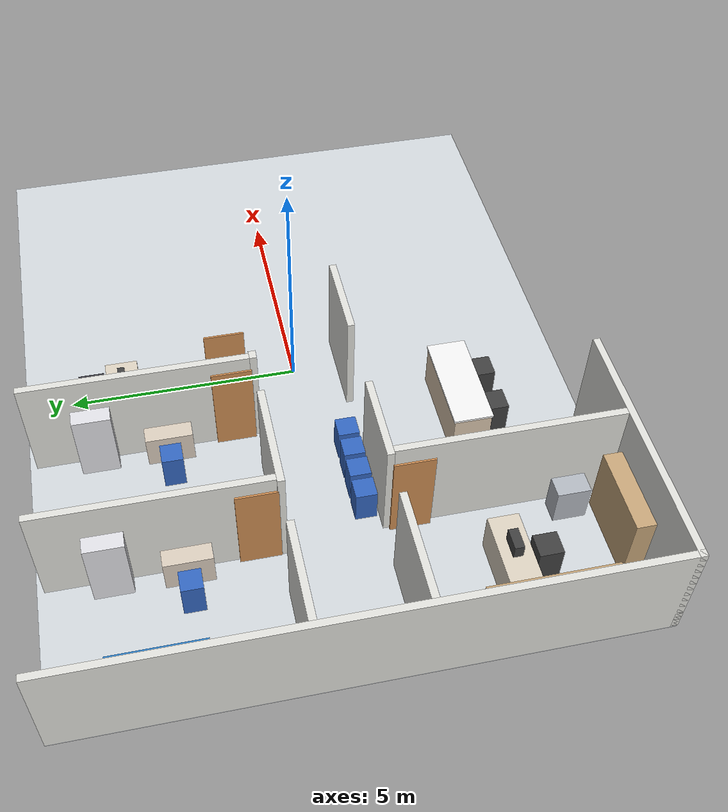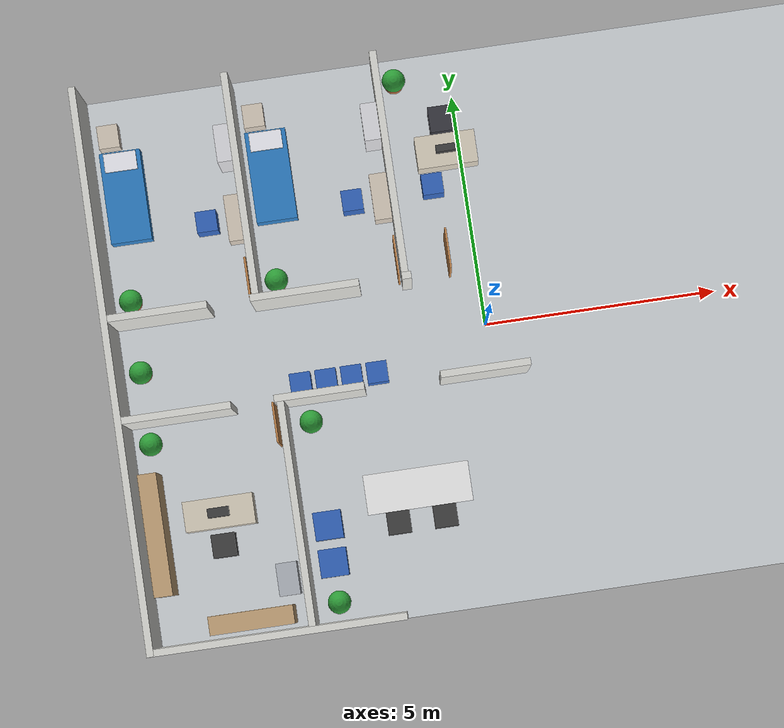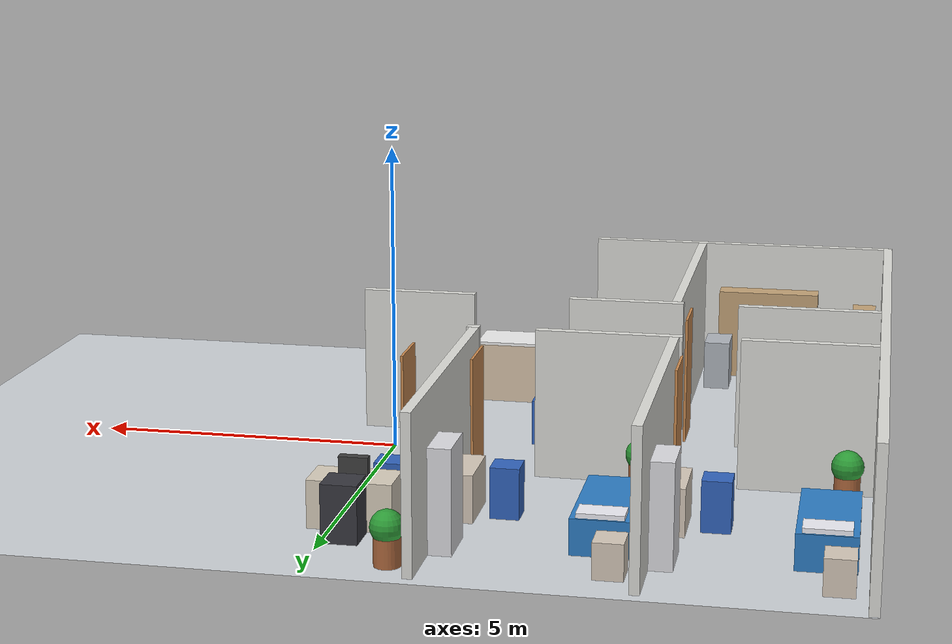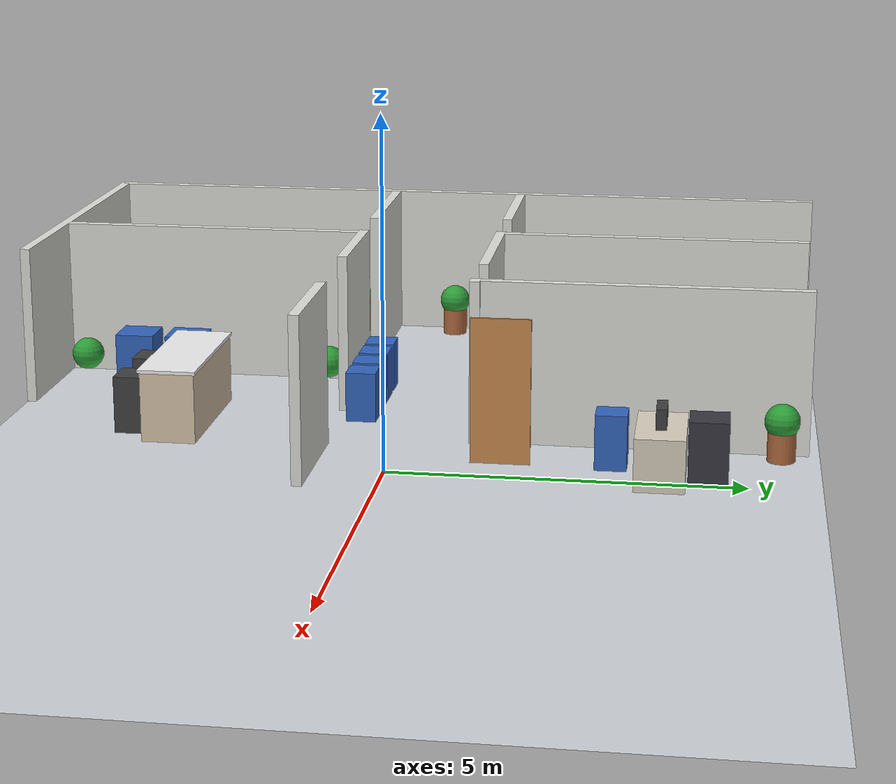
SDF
<sdf version="1.8">
 <world name="hospital">
  <model name="hospital_floor">
   <static>true</static>
   <link name="link">
    <collision name="collision">
     <geometry><plane><normal>0 0 1</normal><size>30 30</size></plane></geometry>
    </collision>
    <visual name="visual">
     <geometry><plane><normal>0 0 1</normal><size>16.0 12.0</size></plane></geometry>
     <material>
      <ambient>0.78 0.80 0.82 1</ambient>
      <diffuse>0.82 0.84 0.86 1</diffuse>
      <specular>0.15 0.15 0.15 1</specular>
     </material>
    </visual>
   </link>
  </model>
  <model name="wall_perimeter_west">
   <static>true</static>
   <pose>-7.925 0 1.2 0 0 0</pose>
   <link name="link">
    <collision name="col"><geometry><box><size>0.15 12.0 2.4</size></box></geometry></collision>
    <visual name="vis">
     <geometry><box><size>0.15 12.0 2.4</size></box></geometry>
     <material><ambient>0.85 0.85 0.83 1</ambient><diffuse>0.88 0.88 0.86 1</diffuse></material>
    </visual>
   </link>
  </model>
  <model name="wall_perimeter_south_west">
   <static>true</static>
   <pose>-5.275 -5.925 1.2 0 0 0</pose>
   <link name="link">
    <collision name="col"><geometry><box><size>5.45 0.15 2.4</size></box></geometry></collision>
    <visual name="vis">
     <geometry><box><size>5.45 0.15 2.4</size></box></geometry>
     <material><ambient>0.85 0.85 0.83 1</ambient><diffuse>0.88 0.88 0.86 1</diffuse></material>
    </visual>
   </link>
  </model>
  <model name="wall_nc_seg1">
   <static>true</static>
   <pose>-6.80 1.075 1.2 0 0 0</pose>
   <link name="link">
    <collision name="col"><geometry><box><size>2.10 0.15 2.4</size></box></geometry></collision>
    <visual name="vis">
     <geometry><box><size>2.10 0.15 2.4</size></box></geometry>
     <material><ambient>0.85 0.85 0.83 1</ambient><diffuse>0.88 0.88 0.86 1</diffuse></material>
    </visual>
   </link>
  </model>
  <model name="wall_nc_seg2">
   <static>true</static>
   <pose>-3.70 1.075 1.2 0 0 0</pose>
   <link name="link">
    <collision name="col"><geometry><box><size>2.30 0.15 2.4</size></box></geometry></collision>
    <visual name="vis">
     <geometry><box><size>2.30 0.15 2.4</size></box></geometry>
     <material><ambient>0.85 0.85 0.83 1</ambient><diffuse>0.88 0.88 0.86 1</diffuse></material>
    </visual>
   </link>
  </model>
  <model name="wall_nc_seg3">
   <static>true</static>
   <pose>-1.55 1.075 1.2 0 0 0</pose>
   <link name="link">
    <collision name="col"><geometry><box><size>0.20 0.15 2.4</size></box></geometry></collision>
    <visual name="vis">
     <geometry><box><size>0.20 0.15 2.4</size></box></geometry>
     <material><ambient>0.85 0.85 0.83 1</ambient><diffuse>0.88 0.88 0.86 1</diffuse></material>
    </visual>
   </link>
  </model>
  <model name="wall_part_r1_r2">
   <static>true</static>
   <pose>-4.725 3.50 1.2 0 0 0</pose>
   <link name="link">
    <collision name="col"><geometry><box><size>0.15 4.70 2.4</size></box></geometry></collision>
    <visual name="vis">
     <geometry><box><size>0.15 4.70 2.4</size></box></geometry>
     <material><ambient>0.85 0.85 0.83 1</ambient><diffuse>0.88 0.88 0.86 1</diffuse></material>
    </visual>
   </link>
  </model>
  <model name="wall_part_r2_dr">
   <static>true</static>
   <pose>-1.575 3.50 1.2 0 0 0</pose>
   <link name="link">
    <collision name="col"><geometry><box><size>0.15 4.70 2.4</size></box></geometry></collision>
    <visual name="vis">
     <geometry><box><size>0.15 4.70 2.4</size></box></geometry>
     <material><ambient>0.85 0.85 0.83 1</ambient><diffuse>0.88 0.88 0.86 1</diffuse></material>
    </visual>
   </link>
  </model>
  <model name="wall_sc_seg1">
   <static>true</static>
   <pose>-6.70 -1.075 1.2 0 0 0</pose>
   <link name="link">
    <collision name="col"><geometry><box><size>2.30 0.15 2.4</size></box></geometry></collision>
    <visual name="vis">
     <geometry><box><size>2.30 0.15 2.4</size></box></geometry>
     <material><ambient>0.85 0.85 0.83 1</ambient><diffuse>0.88 0.88 0.86 1</diffuse></material>
    </visual>
   </link>
  </model>
  <model name="wall_sc_seg2">
   <static>true</static>
   <pose>-3.70 -1.075 1.2 0 0 0</pose>
   <link name="link">
    <collision name="col"><geometry><box><size>1.90 0.15 2.4</size></box></geometry></collision>
    <visual name="vis">
     <geometry><box><size>1.90 0.15 2.4</size></box></geometry>
     <material><ambient>0.85 0.85 0.83 1</ambient><diffuse>0.88 0.88 0.86 1</diffuse></material>
    </visual>
   </link>
  </model>
  <model name="wall_sc_seg3">
   <static>true</static>
   <pose>-0.20 -1.075 1.2 0 0 0</pose>
   <link name="link">
    <collision name="col"><geometry><box><size>1.90 0.15 2.4</size></box></geometry></collision>
    <visual name="vis">
     <geometry><box><size>1.90 0.15 2.4</size></box></geometry>
     <material><ambient>0.85 0.85 0.83 1</ambient><diffuse>0.88 0.88 0.86 1</diffuse></material>
    </visual>
   </link>
  </model>
  <model name="wall_part_ph_rw">
   <static>true</static>
   <pose>-4.525 -3.50 1.2 0 0 0</pose>
   <link name="link">
    <collision name="col"><geometry><box><size>0.15 4.70 2.4</size></box></geometry></collision>
    <visual name="vis">
     <geometry><box><size>0.15 4.70 2.4</size></box></geometry>
     <material><ambient>0.85 0.85 0.83 1</ambient><diffuse>0.88 0.88 0.86 1</diffuse></material>
    </visual>
   </link>
  </model>
  <model name="door_panel_r1">
   <static>true</static>
   <pose>-4.85 1.55 1.05 0 0 0</pose>
   <link name="link">
    <visual name="vis">
     <geometry><box><size>0.04 0.85 2.1</size></box></geometry>
     <material><ambient>0.75 0.52 0.30 1</ambient><diffuse>0.80 0.55 0.32 1</diffuse></material>
    </visual>
   </link>
  </model>
  <model name="door_panel_r2">
   <static>true</static>
   <pose>-1.70 1.55 1.05 0 0 0</pose>
   <link name="link">
    <visual name="vis">
     <geometry><box><size>0.04 0.85 2.1</size></box></geometry>
     <material><ambient>0.75 0.52 0.30 1</ambient><diffuse>0.80 0.55 0.32 1</diffuse></material>
    </visual>
   </link>
  </model>
  <model name="door_panel_dr">
   <static>true</static>
   <pose>-0.60 1.55 1.05 0 0 0</pose>
   <link name="link">
    <visual name="vis">
     <geometry><box><size>0.04 0.85 2.1</size></box></geometry>
     <material><ambient>0.75 0.52 0.30 1</ambient><diffuse>0.80 0.55 0.32 1</diffuse></material>
    </visual>
   </link>
  </model>
  <model name="door_panel_ph">
   <static>true</static>
   <pose>-4.70 -1.55 1.05 0 0 0</pose>
   <link name="link">
    <visual name="vis">
     <geometry><box><size>0.04 0.85 2.1</size></box></geometry>
     <material><ambient>0.75 0.52 0.30 1</ambient><diffuse>0.80 0.55 0.32 1</diffuse></material>
    </visual>
   </link>
  </model>
  <model name="r1_bed">
   <static>true</static>
   <pose>-7.25 3.80 0.325 0 0 0</pose>
   <link name="link">
    <collision name="col"><geometry><box><size>0.9 2.0 0.65</size></box></geometry></collision>
    <visual name="vis_mattress">
     <pose>0 0 0.05 0 0 0</pose>
     <geometry><box><size>0.88 1.96 0.55</size></box></geometry>
     <material><ambient>0.15 0.45 0.72 1</ambient><diffuse>0.18 0.50 0.78 1</diffuse></material>
    </visual>
    <visual name="vis_pillow">
     <pose>0 0.75 0.35 0 0 0</pose>
     <geometry><box><size>0.70 0.40 0.10</size></box></geometry>
     <material><ambient>0.92 0.92 0.95 1</ambient><diffuse>0.95 0.95 0.98 1</diffuse></material>
    </visual>
   </link>
  </model>
  <model name="r1_bedside_table">
   <static>true</static>
   <pose>-7.45 5.15 0.275 0 0 0</pose>
   <link name="link">
    <collision name="col"><geometry><box><size>0.45 0.50 0.55</size></box></geometry></collision>
    <visual name="vis">
     <geometry><box><size>0.45 0.50 0.55</size></box></geometry>
     <material><ambient>0.80 0.76 0.70 1</ambient><diffuse>0.85 0.80 0.74 1</diffuse></material>
    </visual>
   </link>
  </model>
  <model name="r1_cabinet">
   <static>true</static>
   <pose>-4.95 4.50 0.80 0 0 0</pose>
   <link name="link">
    <collision name="col"><geometry><box><size>0.40 0.80 1.60</size></box></geometry></collision>
    <visual name="vis">
     <geometry><box><size>0.40 0.80 1.60</size></box></geometry>
     <material><ambient>0.82 0.82 0.85 1</ambient><diffuse>0.88 0.88 0.90 1</diffuse></material>
    </visual>
   </link>
  </model>
  <model name="r1_desk">
   <static>true</static>
   <pose>-4.95 3.00 0.375 0 0 0</pose>
   <link name="link">
    <collision name="col"><geometry><box><size>0.45 1.00 0.75</size></box></geometry></collision>
    <visual name="vis">
     <geometry><box><size>0.45 1.00 0.75</size></box></geometry>
     <material><ambient>0.80 0.76 0.70 1</ambient><diffuse>0.85 0.80 0.74 1</diffuse></material>
    </visual>
   </link>
  </model>
  <model name="r1_chair">
   <static>true</static>
   <pose>-5.60 3.00 0.40 0 0 0</pose>
   <link name="link">
    <collision name="col"><geometry><box><size>0.45 0.45 0.80</size></box></geometry></collision>
    <visual name="vis">
     <geometry><box><size>0.45 0.45 0.80</size></box></geometry>
     <material><ambient>0.18 0.35 0.65 1</ambient><diffuse>0.20 0.40 0.75 1</diffuse></material>
    </visual>
   </link>
  </model>
  <model name="r1_plant">
   <static>true</static>
   <pose>-7.45 1.55 0.40 0 0 0</pose>
   <link name="link">
    <collision name="col">
     <geometry><cylinder><radius>0.22</radius><length>0.80</length></cylinder></geometry>
    </collision>
    <visual name="vis_pot">
     <pose>0 0 -0.15 0 0 0</pose>
     <geometry><cylinder><radius>0.20</radius><length>0.45</length></cylinder></geometry>
     <material><ambient>0.65 0.38 0.22 1</ambient><diffuse>0.70 0.42 0.25 1</diffuse></material>
    </visual>
    <visual name="vis_plant">
     <pose>0 0 0.20 0 0 0</pose>
     <geometry><sphere><radius>0.25</radius></sphere></geometry>
     <material><ambient>0.15 0.55 0.20 1</ambient><diffuse>0.18 0.62 0.22 1</diffuse></material>
    </visual>
   </link>
  </model>
  <model name="r2_bed">
   <static>true</static>
   <pose>-4.10 3.80 0.325 0 0 0</pose>
   <link name="link">
    <collision name="col"><geometry><box><size>0.9 2.0 0.65</size></box></geometry></collision>
    <visual name="vis_mattress">
     <pose>0 0 0.05 0 0 0</pose>
     <geometry><box><size>0.88 1.96 0.55</size></box></geometry>
     <material><ambient>0.15 0.45 0.72 1</ambient><diffuse>0.18 0.50 0.78 1</diffuse></material>
    </visual>
    <visual name="vis_pillow">
     <pose>0 0.75 0.35 0 0 0</pose>
     <geometry><box><size>0.70 0.40 0.10</size></box></geometry>
     <material><ambient>0.92 0.92 0.95 1</ambient><diffuse>0.95 0.95 0.98 1</diffuse></material>
    </visual>
   </link>
  </model>
  <model name="r2_bedside_table">
   <static>true</static>
   <pose>-4.30 5.15 0.275 0 0 0</pose>
   <link name="link">
    <collision name="col"><geometry><box><size>0.45 0.50 0.55</size></box></geometry></collision>
    <visual name="vis">
     <geometry><box><size>0.45 0.50 0.55</size></box></geometry>
     <material><ambient>0.80 0.76 0.70 1</ambient><diffuse>0.85 0.80 0.74 1</diffuse></material>
    </visual>
   </link>
  </model>
  <model name="r2_cabinet">
   <static>true</static>
   <pose>-1.80 4.50 0.80 0 0 0</pose>
   <link name="link">
    <collision name="col"><geometry><box><size>0.40 0.80 1.60</size></box></geometry></collision>
    <visual name="vis">
     <geometry><box><size>0.40 0.80 1.60</size></box></geometry>
     <material><ambient>0.82 0.82 0.85 1</ambient><diffuse>0.88 0.88 0.90 1</diffuse></material>
    </visual>
   </link>
  </model>
  <model name="r2_desk">
   <static>true</static>
   <pose>-1.80 3.00 0.375 0 0 0</pose>
   <link name="link">
    <collision name="col"><geometry><box><size>0.45 1.00 0.75</size></box></geometry></collision>
    <visual name="vis">
     <geometry><box><size>0.45 1.00 0.75</size></box></geometry>
     <material><ambient>0.80 0.76 0.70 1</ambient><diffuse>0.85 0.80 0.74 1</diffuse></material>
    </visual>
   </link>
  </model>
  <model name="r2_chair">
   <static>true</static>
   <pose>-2.45 3.00 0.40 0 0 0</pose>
   <link name="link">
    <collision name="col"><geometry><box><size>0.45 0.45 0.80</size></box></geometry></collision>
    <visual name="vis">
     <geometry><box><size>0.45 0.45 0.80</size></box></geometry>
     <material><ambient>0.18 0.35 0.65 1</ambient><diffuse>0.20 0.40 0.75 1</diffuse></material>
    </visual>
   </link>
  </model>
  <model name="r2_plant">
   <static>true</static>
   <pose>-4.30 1.55 0.40 0 0 0</pose>
   <link name="link">
    <collision name="col">
     <geometry><cylinder><radius>0.22</radius><length>0.80</length></cylinder></geometry>
    </collision>
    <visual name="vis_pot">
     <pose>0 0 -0.15 0 0 0</pose>
     <geometry><cylinder><radius>0.20</radius><length>0.45</length></cylinder></geometry>
     <material><ambient>0.65 0.38 0.22 1</ambient><diffuse>0.70 0.42 0.25 1</diffuse></material>
    </visual>
    <visual name="vis_plant">
     <pose>0 0 0.20 0 0 0</pose>
     <geometry><sphere><radius>0.25</radius></sphere></geometry>
     <material><ambient>0.15 0.55 0.20 1</ambient><diffuse>0.18 0.62 0.22 1</diffuse></material>
    </visual>
   </link>
  </model>
  <model name="dr_desk">
   <static>true</static>
   <pose>-0.30 3.80 0.375 0 0 0</pose>
   <link name="link">
    <collision name="col"><geometry><box><size>1.30 0.70 0.75</size></box></geometry></collision>
    <visual name="vis_desk">
     <geometry><box><size>1.30 0.70 0.75</size></box></geometry>
     <material><ambient>0.82 0.78 0.70 1</ambient><diffuse>0.86 0.82 0.75 1</diffuse></material>
    </visual>
    <visual name="vis_monitor">
     <pose>0 0 0.525 0 0 0</pose>
     <geometry><box><size>0.45 0.15 0.30</size></box></geometry>
     <material><ambient>0.2 0.2 0.2 1</ambient><diffuse>0.25 0.25 0.25 1</diffuse></material>
    </visual>
   </link>
  </model>
  <model name="dr_chair">
   <static>true</static>
   <pose>-0.30 4.45 0.45 0 0 0</pose>
   <link name="link">
    <collision name="col"><geometry><box><size>0.55 0.55 0.90</size></box></geometry></collision>
    <visual name="vis">
     <geometry><box><size>0.55 0.55 0.90</size></box></geometry>
     <material><ambient>0.2 0.2 0.2 1</ambient><diffuse>0.22 0.22 0.25 1</diffuse></material>
    </visual>
   </link>
  </model>
  <model name="dr_visitor_chair_1">
   <static>true</static>
   <pose>-0.70 3.10 0.40 0 0 0</pose>
   <link name="link">
    <collision name="col"><geometry><box><size>0.45 0.45 0.80</size></box></geometry></collision>
    <visual name="vis">
     <geometry><box><size>0.45 0.45 0.80</size></box></geometry>
     <material><ambient>0.18 0.35 0.65 1</ambient><diffuse>0.20 0.40 0.75 1</diffuse></material>
    </visual>
   </link>
  </model>
  <model name="dr_plant">
   <static>true</static>
   <pose>-1.20 5.45 0.40 0 0 0</pose>
   <link name="link">
    <collision name="col">
     <geometry><cylinder><radius>0.22</radius><length>0.80</length></cylinder></geometry>
    </collision>
    <visual name="vis_pot">
     <pose>0 0 -0.15 0 0 0</pose>
     <geometry><cylinder><radius>0.20</radius><length>0.45</length></cylinder></geometry>
     <material><ambient>0.65 0.38 0.22 1</ambient><diffuse>0.70 0.42 0.25 1</diffuse></material>
    </visual>
    <visual name="vis_plant">
     <pose>0 0 0.20 0 0 0</pose>
     <geometry><sphere><radius>0.25</radius></sphere></geometry>
     <material><ambient>0.15 0.55 0.20 1</ambient><diffuse>0.18 0.62 0.22 1</diffuse></material>
    </visual>
   </link>
  </model>
  <model name="ph_shelves_west">
   <static>true</static>
   <pose>-7.55 -3.50 0.80 0 0 0</pose>
   <link name="link">
    <collision name="col"><geometry><box><size>0.40 2.60 1.60</size></box></geometry></collision>
    <visual name="vis">
     <geometry><box><size>0.40 2.60 1.60</size></box></geometry>
     <material><ambient>0.72 0.60 0.45 1</ambient><diffuse>0.78 0.65 0.48 1</diffuse></material>
    </visual>
   </link>
  </model>
  <model name="ph_shelves_south">
   <static>true</static>
   <pose>-5.80 -5.55 0.80 0 0 0</pose>
   <link name="link">
    <collision name="col"><geometry><box><size>1.80 0.40 1.60</size></box></geometry></collision>
    <visual name="vis">
     <geometry><box><size>1.80 0.40 1.60</size></box></geometry>
     <material><ambient>0.72 0.60 0.45 1</ambient><diffuse>0.78 0.65 0.48 1</diffuse></material>
    </visual>
   </link>
  </model>
  <model name="ph_dispensing_counter">
   <static>true</static>
   <pose>-6.20 -3.20 0.45 0 0 0</pose>
   <link name="link">
    <collision name="col"><geometry><box><size>1.50 0.65 0.90</size></box></geometry></collision>
    <visual name="vis">
     <geometry><box><size>1.50 0.65 0.90</size></box></geometry>
     <material><ambient>0.82 0.78 0.70 1</ambient><diffuse>0.86 0.82 0.75 1</diffuse></material>
    </visual>
    <visual name="vis_terminal">
     <pose>0 0 0.60 0 0 0</pose>
     <geometry><box><size>0.45 0.20 0.30</size></box></geometry>
     <material><ambient>0.2 0.2 0.2 1</ambient><diffuse>0.25 0.25 0.25 1</diffuse></material>
    </visual>
   </link>
  </model>
  <model name="ph_chair">
   <static>true</static>
   <pose>-6.20 -3.90 0.40 0 0 0</pose>
   <link name="link">
    <collision name="col"><geometry><box><size>0.50 0.50 0.80</size></box></geometry></collision>
    <visual name="vis">
     <geometry><box><size>0.50 0.50 0.80</size></box></geometry>
     <material><ambient>0.2 0.2 0.2 1</ambient><diffuse>0.25 0.25 0.25 1</diffuse></material>
    </visual>
   </link>
  </model>
  <model name="ph_cart">
   <static>true</static>
   <pose>-4.95 -4.80 0.425 0 0 0</pose>
   <link name="link">
    <collision name="col"><geometry><box><size>0.45 0.70 0.85</size></box></geometry></collision>
    <visual name="vis">
     <geometry><box><size>0.45 0.70 0.85</size></box></geometry>
     <material><ambient>0.65 0.68 0.72 1</ambient><diffuse>0.70 0.72 0.75 1</diffuse></material>
    </visual>
   </link>
  </model>
  <model name="ph_plant">
   <static>true</static>
   <pose>-7.45 -1.55 0.40 0 0 0</pose>
   <link name="link">
    <collision name="col">
     <geometry><cylinder><radius>0.22</radius><length>0.80</length></cylinder></geometry>
    </collision>
    <visual name="vis_pot">
     <pose>0 0 -0.15 0 0 0</pose>
     <geometry><cylinder><radius>0.20</radius><length>0.45</length></cylinder></geometry>
     <material><ambient>0.65 0.38 0.22 1</ambient><diffuse>0.70 0.42 0.25 1</diffuse></material>
    </visual>
    <visual name="vis_plant">
     <pose>0 0 0.20 0 0 0</pose>
     <geometry><sphere><radius>0.25</radius></sphere></geometry>
     <material><ambient>0.15 0.55 0.20 1</ambient><diffuse>0.18 0.62 0.22 1</diffuse></material>
    </visual>
   </link>
  </model>
  <model name="rw_reception_counter">
   <static>true</static>
   <pose>-1.95 -3.30 0.525 0 0 0</pose>
   <link name="link">
    <collision name="col"><geometry><box><size>2.20 0.80 1.05</size></box></geometry></collision>
    <visual name="vis_base">
     <geometry><box><size>2.20 0.80 1.05</size></box></geometry>
     <material><ambient>0.82 0.75 0.65 1</ambient><diffuse>0.86 0.78 0.68 1</diffuse></material>
    </visual>
    <visual name="vis_top">
     <pose>0 0 0.53 0 0 0</pose>
     <geometry><box><size>2.25 0.85 0.05</size></box></geometry>
     <material><ambient>0.92 0.92 0.92 1</ambient><diffuse>0.95 0.95 0.95 1</diffuse></material>
    </visual>
   </link>
  </model>
  <model name="rw_reception_chair_1">
   <static>true</static>
   <pose>-2.45 -3.95 0.425 0 0 0</pose>
   <link name="link">
    <collision name="col"><geometry><box><size>0.50 0.50 0.85</size></box></geometry></collision>
    <visual name="vis">
     <geometry><box><size>0.50 0.50 0.85</size></box></geometry>
     <material><ambient>0.2 0.2 0.2 1</ambient><diffuse>0.25 0.25 0.25 1</diffuse></material>
    </visual>
   </link>
  </model>
  <model name="rw_reception_chair_2">
   <static>true</static>
   <pose>-1.45 -3.95 0.425 0 0 0</pose>
   <link name="link">
    <collision name="col"><geometry><box><size>0.50 0.50 0.85</size></box></geometry></collision>
    <visual name="vis">
     <geometry><box><size>0.50 0.50 0.85</size></box></geometry>
     <material><ambient>0.2 0.2 0.2 1</ambient><diffuse>0.25 0.25 0.25 1</diffuse></material>
    </visual>
   </link>
  </model>
  <model name="rw_waiting_chair_l1">
   <static>true</static>
   <pose>-3.95 -3.80 0.40 0 0 0</pose>
   <link name="link">
    <collision name="col"><geometry><box><size>0.60 0.60 0.80</size></box></geometry></collision>
    <visual name="vis">
     <geometry><box><size>0.60 0.60 0.80</size></box></geometry>
     <material><ambient>0.18 0.35 0.65 1</ambient><diffuse>0.20 0.40 0.75 1</diffuse></material>
    </visual>
   </link>
  </model>
  <model name="rw_waiting_chair_l2">
   <static>true</static>
   <pose>-3.95 -4.60 0.40 0 0 0</pose>
   <link name="link">
    <collision name="col"><geometry><box><size>0.60 0.60 0.80</size></box></geometry></collision>
    <visual name="vis">
     <geometry><box><size>0.60 0.60 0.80</size></box></geometry>
     <material><ambient>0.18 0.35 0.65 1</ambient><diffuse>0.20 0.40 0.75 1</diffuse></material>
    </visual>
   </link>
  </model>
  <model name="rw_plant_1">
   <static>true</static>
   <pose>-4.00 -1.55 0.40 0 0 0</pose>
   <link name="link">
    <collision name="col">
     <geometry><cylinder><radius>0.22</radius><length>0.80</length></cylinder></geometry>
    </collision>
    <visual name="vis">
     <geometry><sphere><radius>0.25</radius></sphere></geometry>
     <material><ambient>0.15 0.55 0.20 1</ambient><diffuse>0.18 0.62 0.22 1</diffuse></material>
    </visual>
   </link>
  </model>
  <model name="rw_plant_3">
   <static>true</static>
   <pose>-3.95 -5.45 0.40 0 0 0</pose>
   <link name="link">
    <collision name="col">
     <geometry><cylinder><radius>0.22</radius><length>0.80</length></cylinder></geometry>
    </collision>
    <visual name="vis">
     <geometry><sphere><radius>0.25</radius></sphere></geometry>
     <material><ambient>0.15 0.55 0.20 1</ambient><diffuse>0.18 0.62 0.22 1</diffuse></material>
    </visual>
   </link>
  </model>
  <model name="corridor_chair_1">
   <static>true</static>
   <pose>-4.10 -0.72 0.375 0 0 0</pose>
   <link name="link">
    <collision name="col"><geometry><box><size>0.45 0.45 0.75</size></box></geometry></collision>
    <visual name="vis">
     <geometry><box><size>0.45 0.45 0.75</size></box></geometry>
     <material><ambient>0.18 0.35 0.65 1</ambient><diffuse>0.20 0.40 0.75 1</diffuse></material>
    </visual>
   </link>
  </model>
  <model name="corridor_chair_2">
   <static>true</static>
   <pose>-3.55 -0.72 0.375 0 0 0</pose>
   <link name="link">
    <collision name="col"><geometry><box><size>0.45 0.45 0.75</size></box></geometry></collision>
    <visual name="vis">
     <geometry><box><size>0.45 0.45 0.75</size></box></geometry>
     <material><ambient>0.18 0.35 0.65 1</ambient><diffuse>0.20 0.40 0.75 1</diffuse></material>
    </visual>
   </link>
  </model>
  <model name="corridor_chair_3">
   <static>true</static>
   <pose>-3.00 -0.72 0.375 0 0 0</pose>
   <link name="link">
    <collision name="col"><geometry><box><size>0.45 0.45 0.75</size></box></geometry></collision>
    <visual name="vis">
     <geometry><box><size>0.45 0.45 0.75</size></box></geometry>
     <material><ambient>0.18 0.35 0.65 1</ambient><diffuse>0.20 0.40 0.75 1</diffuse></material>
    </visual>
   </link>
  </model>
  <model name="corridor_chair_4">
   <static>true</static>
   <pose>-2.45 -0.72 0.375 0 0 0</pose>
   <link name="link">
    <collision name="col"><geometry><box><size>0.45 0.45 0.75</size></box></geometry></collision>
    <visual name="vis">
     <geometry><box><size>0.45 0.45 0.75</size></box></geometry>
     <material><ambient>0.18 0.35 0.65 1</ambient><diffuse>0.20 0.40 0.75 1</diffuse></material>
    </visual>
   </link>
  </model>
  <model name="corridor_plant_west">
   <static>true</static>
   <pose>-7.45 0.0 0.40 0 0 0</pose>
   <link name="link">
    <collision name="col">
     <geometry><cylinder><radius>0.22</radius><length>0.80</length></cylinder></geometry>
    </collision>
    <visual name="vis_pot">
     <pose>0 0 -0.15 0 0 0</pose>
     <geometry><cylinder><radius>0.20</radius><length>0.45</length></cylinder></geometry>
     <material><ambient>0.65 0.38 0.22 1</ambient><diffuse>0.70 0.42 0.25 1</diffuse></material>
    </visual>
    <visual name="vis_plant">
     <pose>0 0 0.20 0 0 0</pose>
     <geometry><sphere><radius>0.25</radius></sphere></geometry>
     <material><ambient>0.15 0.55 0.20 1</ambient><diffuse>0.18 0.62 0.22 1</diffuse></material>
    </visual>
   </link>
  </model>
 </world>
</sdf>
